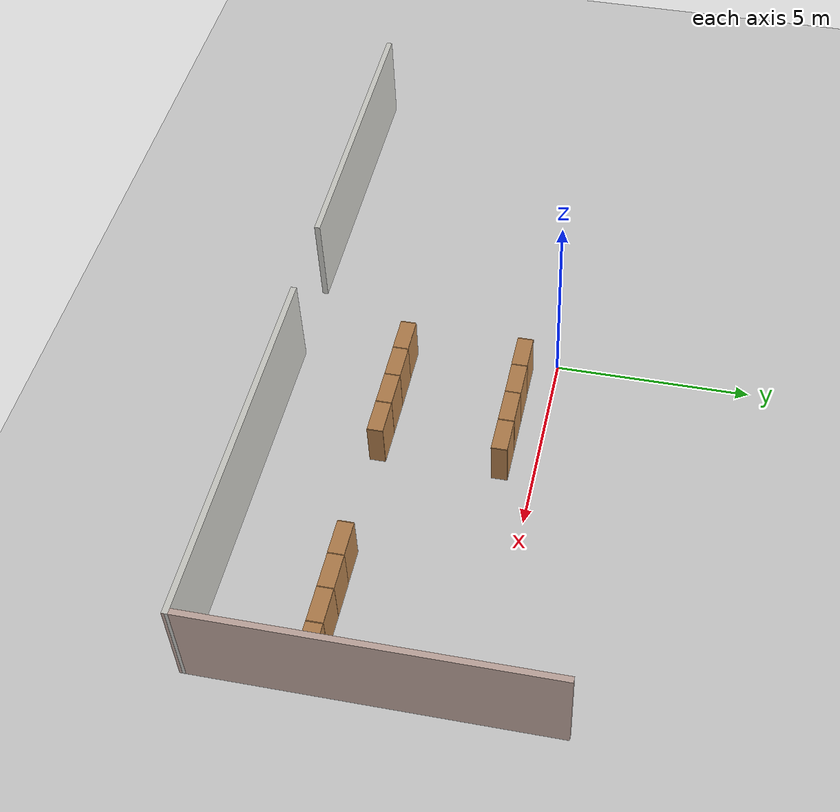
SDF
<sdf version="1.6">
 <world name="default">
  <model name="ground_plane">
   <static>1</static>
   <link name="link">
    <collision name="collision">
     <geometry><plane><normal>0 0 1</normal><size>100 100</size></plane></geometry>
     <surface><friction><ode><mu>100</mu><mu2>50</mu2></ode></friction></surface>
    </collision>
    <visual name="visual">
     <cast_shadows>0</cast_shadows>
     <geometry><plane><normal>0 0 1</normal><size>100 100</size></plane></geometry>
     <material>
      <script><uri>file://media/materials/scripts/gazebo.material</uri><name>Gazebo/Grey</name></script>
     </material>
    </visual>
   </link>
  </model>
  <model name="floor">
   <link name="Wall_194">
    <pose>-6.72445 -5.41807 0 0 -0 0</pose>
    <visual name="Wall_194_Visual">
     <pose>0 0 1.25 0 -0 0</pose>
     <geometry><box><size>8 0.15 2.5</size></box></geometry>
     <material>
      <script><uri>file://media/materials/scripts/gazebo.material</uri><name>Gazebo/CeilingTiled</name></script>
      <ambient>0.760784 0.662745 0.627451 1</ambient>
     </material>
     <meta><layer>0</layer></meta>
    </visual>
    <collision name="Wall_194_Collision">
     <pose>0 0 1.25 0 -0 0</pose>
     <geometry><box><size>8 0.15 2.5</size></box></geometry>
     <surface>
      <friction>
       <ode><mu>1</mu><mu2>1</mu2><fdir1>0 0 0</fdir1><slip1>0</slip1><slip2>0</slip2></ode>
       <torsional>
        <coefficient>1</coefficient>
        <patch_radius>0</patch_radius>
        <surface_radius>0</surface_radius>
        <use_patch_radius>1</use_patch_radius>
        <ode><slip>0</slip></ode>
       </torsional>
      </friction>
      <bounce><restitution_coefficient>0</restitution_coefficient><threshold>1e+06</threshold></bounce>
      <contact>
       <collide_without_contact>0</collide_without_contact>
       <collide_without_contact_bitmask>1</collide_without_contact_bitmask>
       <collide_bitmask>1</collide_bitmask>
       <ode>
        <soft_cfm>0</soft_cfm>
        <soft_erp>0.2</soft_erp>
        <kp>1e+13</kp>
        <kd>1</kd>
        <max_vel>0.01</max_vel>
        <min_depth>0</min_depth>
       </ode>
       <bullet>
        <split_impulse>1</split_impulse>
        <split_impulse_penetration_threshold>-0.01</split_impulse_penetration_threshold>
        <soft_cfm>0</soft_cfm>
        <soft_erp>0.2</soft_erp>
        <kp>1e+13</kp>
        <kd>1</kd>
       </bullet>
      </contact>
     </surface>
    </collision>
   </link>
   <link name="Wall_196">
    <pose>4.3116 -5.43549 0 0 0 -0.00366</pose>
    <visual name="Wall_196_Visual">
     <pose>0 0 1.25 0 -0 0</pose>
     <geometry><box><size>9.67217 0.15 2.5</size></box></geometry>
     <material>
      <script><uri>file://media/materials/scripts/gazebo.material</uri><name>Gazebo/CeilingTiled</name></script>
      <ambient>0.760784 0.662745 0.627451 1</ambient>
     </material>
     <meta><layer>0</layer></meta>
    </visual>
    <collision name="Wall_196_Collision">
     <pose>0 0 1.25 0 -0 0</pose>
     <geometry><box><size>9.67217 0.15 2.5</size></box></geometry>
     <surface>
      <friction>
       <ode><mu>1</mu><mu2>1</mu2><fdir1>0 0 0</fdir1><slip1>0</slip1><slip2>0</slip2></ode>
       <torsional>
        <coefficient>1</coefficient>
        <patch_radius>0</patch_radius>
        <surface_radius>0</surface_radius>
        <use_patch_radius>1</use_patch_radius>
        <ode><slip>0</slip></ode>
       </torsional>
      </friction>
      <bounce><restitution_coefficient>0</restitution_coefficient><threshold>1e+06</threshold></bounce>
      <contact>
       <collide_without_contact>0</collide_without_contact>
       <collide_without_contact_bitmask>1</collide_without_contact_bitmask>
       <collide_bitmask>1</collide_bitmask>
       <ode>
        <soft_cfm>0</soft_cfm>
        <soft_erp>0.2</soft_erp>
        <kp>1e+13</kp>
        <kd>1</kd>
        <max_vel>0.01</max_vel>
        <min_depth>0</min_depth>
       </ode>
       <bullet>
        <split_impulse>1</split_impulse>
        <split_impulse_penetration_threshold>-0.01</split_impulse_penetration_threshold>
        <soft_cfm>0</soft_cfm>
        <soft_erp>0.2</soft_erp>
        <kp>1e+13</kp>
        <kd>1</kd>
       </bullet>
      </contact>
     </surface>
    </collision>
   </link>
   <link name="Wall_83">
    <pose>9.07265 -1.12792 0 0 0 -1.5708</pose>
    <visual name="Wall_83_Visual">
     <pose>0 0 1.25 0 -0 0</pose>
     <geometry><box><size>8.8 0.15 2.5</size></box></geometry>
     <material>
      <script><uri>file://media/materials/scripts/gazebo.material</uri><name>Gazebo/Grey</name></script>
      <ambient>0.760784 0.662745 0.627451 1</ambient>
     </material>
     <meta><layer>0</layer></meta>
    </visual>
    <collision name="Wall_83_Collision">
     <pose>0 0 1.25 0 -0 0</pose>
     <geometry><box><size>8.8 0.15 2.5</size></box></geometry>
     <surface>
      <friction>
       <ode><mu>1</mu><mu2>1</mu2><fdir1>0 0 0</fdir1><slip1>0</slip1><slip2>0</slip2></ode>
       <torsional>
        <coefficient>1</coefficient>
        <patch_radius>0</patch_radius>
        <surface_radius>0</surface_radius>
        <use_patch_radius>1</use_patch_radius>
        <ode><slip>0</slip></ode>
       </torsional>
      </friction>
      <bounce><restitution_coefficient>0</restitution_coefficient><threshold>1e+06</threshold></bounce>
      <contact>
       <collide_without_contact>0</collide_without_contact>
       <collide_without_contact_bitmask>1</collide_without_contact_bitmask>
       <collide_bitmask>1</collide_bitmask>
       <ode>
        <soft_cfm>0</soft_cfm>
        <soft_erp>0.2</soft_erp>
        <kp>1e+13</kp>
        <kd>1</kd>
        <max_vel>0.01</max_vel>
        <min_depth>0</min_depth>
       </ode>
       <bullet>
        <split_impulse>1</split_impulse>
        <split_impulse_penetration_threshold>-0.01</split_impulse_penetration_threshold>
        <soft_cfm>0</soft_cfm>
        <soft_erp>0.2</soft_erp>
        <kp>1e+13</kp>
        <kd>1</kd>
       </bullet>
      </contact>
     </surface>
    </collision>
   </link>
   <static>1</static>
   <pose>1.26361 -1.27025 0 0 -0 0</pose>
  </model>
  <model name="Bookshelf-4_clone_4">
   <model name="bookshelf">
    <static>1</static>
    <link name="link">
     <inertial><mass>1</mass></inertial>
     <collision name="back">
      <pose>0 0.005 0.6 0 -0 0</pose>
      <geometry><box><size>0.9 0.01 1.2</size></box></geometry>
     </collision>
     <visual name="visual1">
      <pose>0 0.005 0.6 0 -0 0</pose>
      <geometry><box><size>0.9 0.01 1.2</size></box></geometry>
      <material>
       <script><uri>file://media/materials/scripts/gazebo.material</uri><name>Gazebo/Wood</name></script>
      </material>
     </visual>
     <collision name="left_side">
      <pose>0.45 -0.195 0.6 0 -0 0</pose>
      <geometry><box><size>0.02 0.4 1.2</size></box></geometry>
     </collision>
     <visual name="visual2">
      <pose>0.45 -0.195 0.6 0 -0 0</pose>
      <geometry><box><size>0.02 0.4 1.2</size></box></geometry>
      <material>
       <script><uri>file://media/materials/scripts/gazebo.material</uri><name>Gazebo/Wood</name></script>
      </material>
     </visual>
     <collision name="right_side">
      <pose>-0.45 -0.195 0.6 0 -0 0</pose>
      <geometry><box><size>0.02 0.4 1.2</size></box></geometry>
     </collision>
     <visual name="visual3">
      <pose>-0.45 -0.195 0.6 0 -0 0</pose>
      <geometry><box><size>0.02 0.4 1.2</size></box></geometry>
      <material>
       <script><uri>file://media/materials/scripts/gazebo.material</uri><name>Gazebo/Wood</name></script>
      </material>
     </visual>
     <collision name="bottom">
      <pose>0 -0.195 0.03 0 -0 0</pose>
      <geometry><box><size>0.88 0.4 0.06</size></box></geometry>
     </collision>
     <visual name="visual4">
      <pose>0 -0.195 0.03 0 -0 0</pose>
      <geometry><box><size>0.88 0.4 0.06</size></box></geometry>
      <material>
       <script><uri>file://media/materials/scripts/gazebo.material</uri><name>Gazebo/Wood</name></script>
      </material>
     </visual>
     <collision name="top">
      <pose>0 -0.195 1.19 0 -0 0</pose>
      <geometry><box><size>0.88 0.4 0.02</size></box></geometry>
     </collision>
     <visual name="visual5">
      <pose>0 -0.195 1.19 0 -0 0</pose>
      <geometry><box><size>0.88 0.4 0.02</size></box></geometry>
      <material>
       <script><uri>file://media/materials/scripts/gazebo.material</uri><name>Gazebo/Wood</name></script>
      </material>
     </visual>
     <collision name="low_shelf">
      <pose>0 -0.195 0.43 0 -0 0</pose>
      <geometry><box><size>0.88 0.4 0.02</size></box></geometry>
     </collision>
     <visual name="visual6">
      <pose>0 -0.195 0.43 0 -0 0</pose>
      <geometry><box><size>0.88 0.4 0.02</size></box></geometry>
      <material>
       <script><uri>file://media/materials/scripts/gazebo.material</uri><name>Gazebo/Wood</name></script>
      </material>
     </visual>
     <collision name="high_shelf">
      <pose>0 -0.195 0.8 0 -0 0</pose>
      <geometry><box><size>0.88 0.4 0.02</size></box></geometry>
     </collision>
     <visual name="visual7">
      <pose>0 -0.195 0.8 0 -0 0</pose>
      <geometry><box><size>0.88 0.4 0.02</size></box></geometry>
      <material>
       <script><uri>file://media/materials/scripts/gazebo.material</uri><name>Gazebo/Wood</name></script>
      </material>
     </visual>
    </link>
    <pose>-1.35671 -0.002097 0 0 -0 0</pose>
   </model>
   <model name="bookshelf_0">
    <static>1</static>
    <link name="link">
     <inertial><mass>1</mass></inertial>
     <collision name="back">
      <pose>0 0.005 0.6 0 -0 0</pose>
      <geometry><box><size>0.9 0.01 1.2</size></box></geometry>
     </collision>
     <visual name="visual1">
      <pose>0 0.005 0.6 0 -0 0</pose>
      <geometry><box><size>0.9 0.01 1.2</size></box></geometry>
      <material>
       <script><uri>file://media/materials/scripts/gazebo.material</uri><name>Gazebo/Wood</name></script>
      </material>
     </visual>
     <collision name="left_side">
      <pose>0.45 -0.195 0.6 0 -0 0</pose>
      <geometry><box><size>0.02 0.4 1.2</size></box></geometry>
     </collision>
     <visual name="visual2">
      <pose>0.45 -0.195 0.6 0 -0 0</pose>
      <geometry><box><size>0.02 0.4 1.2</size></box></geometry>
      <material>
       <script><uri>file://media/materials/scripts/gazebo.material</uri><name>Gazebo/Wood</name></script>
      </material>
     </visual>
     <collision name="right_side">
      <pose>-0.45 -0.195 0.6 0 -0 0</pose>
      <geometry><box><size>0.02 0.4 1.2</size></box></geometry>
     </collision>
     <visual name="visual3">
      <pose>-0.45 -0.195 0.6 0 -0 0</pose>
      <geometry><box><size>0.02 0.4 1.2</size></box></geometry>
      <material>
       <script><uri>file://media/materials/scripts/gazebo.material</uri><name>Gazebo/Wood</name></script>
      </material>
     </visual>
     <collision name="bottom">
      <pose>0 -0.195 0.03 0 -0 0</pose>
      <geometry><box><size>0.88 0.4 0.06</size></box></geometry>
     </collision>
     <visual name="visual4">
      <pose>0 -0.195 0.03 0 -0 0</pose>
      <geometry><box><size>0.88 0.4 0.06</size></box></geometry>
      <material>
       <script><uri>file://media/materials/scripts/gazebo.material</uri><name>Gazebo/Wood</name></script>
      </material>
     </visual>
     <collision name="top">
      <pose>0 -0.195 1.19 0 -0 0</pose>
      <geometry><box><size>0.88 0.4 0.02</size></box></geometry>
     </collision>
     <visual name="visual5">
      <pose>0 -0.195 1.19 0 -0 0</pose>
      <geometry><box><size>0.88 0.4 0.02</size></box></geometry>
      <material>
       <script><uri>file://media/materials/scripts/gazebo.material</uri><name>Gazebo/Wood</name></script>
      </material>
     </visual>
     <collision name="low_shelf">
      <pose>0 -0.195 0.43 0 -0 0</pose>
      <geometry><box><size>0.88 0.4 0.02</size></box></geometry>
     </collision>
     <visual name="visual6">
      <pose>0 -0.195 0.43 0 -0 0</pose>
      <geometry><box><size>0.88 0.4 0.02</size></box></geometry>
      <material>
       <script><uri>file://media/materials/scripts/gazebo.material</uri><name>Gazebo/Wood</name></script>
      </material>
     </visual>
     <collision name="high_shelf">
      <pose>0 -0.195 0.8 0 -0 0</pose>
      <geometry><box><size>0.88 0.4 0.02</size></box></geometry>
     </collision>
     <visual name="visual7">
      <pose>0 -0.195 0.8 0 -0 0</pose>
      <geometry><box><size>0.88 0.4 0.02</size></box></geometry>
      <material>
       <script><uri>file://media/materials/scripts/gazebo.material</uri><name>Gazebo/Wood</name></script>
      </material>
     </visual>
    </link>
    <pose>-0.452974 0.001386 0 0 -0 0</pose>
   </model>
   <model name="bookshelf_1">
    <static>1</static>
    <link name="link">
     <inertial><mass>1</mass></inertial>
     <collision name="back">
      <pose>0 0.005 0.6 0 -0 0</pose>
      <geometry><box><size>0.9 0.01 1.2</size></box></geometry>
     </collision>
     <visual name="visual1">
      <pose>0 0.005 0.6 0 -0 0</pose>
      <geometry><box><size>0.9 0.01 1.2</size></box></geometry>
      <material>
       <script><uri>file://media/materials/scripts/gazebo.material</uri><name>Gazebo/Wood</name></script>
      </material>
     </visual>
     <collision name="left_side">
      <pose>0.45 -0.195 0.6 0 -0 0</pose>
      <geometry><box><size>0.02 0.4 1.2</size></box></geometry>
     </collision>
     <visual name="visual2">
      <pose>0.45 -0.195 0.6 0 -0 0</pose>
      <geometry><box><size>0.02 0.4 1.2</size></box></geometry>
      <material>
       <script><uri>file://media/materials/scripts/gazebo.material</uri><name>Gazebo/Wood</name></script>
      </material>
     </visual>
     <collision name="right_side">
      <pose>-0.45 -0.195 0.6 0 -0 0</pose>
      <geometry><box><size>0.02 0.4 1.2</size></box></geometry>
     </collision>
     <visual name="visual3">
      <pose>-0.45 -0.195 0.6 0 -0 0</pose>
      <geometry><box><size>0.02 0.4 1.2</size></box></geometry>
      <material>
       <script><uri>file://media/materials/scripts/gazebo.material</uri><name>Gazebo/Wood</name></script>
      </material>
     </visual>
     <collision name="bottom">
      <pose>0 -0.195 0.03 0 -0 0</pose>
      <geometry><box><size>0.88 0.4 0.06</size></box></geometry>
     </collision>
     <visual name="visual4">
      <pose>0 -0.195 0.03 0 -0 0</pose>
      <geometry><box><size>0.88 0.4 0.06</size></box></geometry>
      <material>
       <script><uri>file://media/materials/scripts/gazebo.material</uri><name>Gazebo/Wood</name></script>
      </material>
     </visual>
     <collision name="top">
      <pose>0 -0.195 1.19 0 -0 0</pose>
      <geometry><box><size>0.88 0.4 0.02</size></box></geometry>
     </collision>
     <visual name="visual5">
      <pose>0 -0.195 1.19 0 -0 0</pose>
      <geometry><box><size>0.88 0.4 0.02</size></box></geometry>
      <material>
       <script><uri>file://media/materials/scripts/gazebo.material</uri><name>Gazebo/Wood</name></script>
      </material>
     </visual>
     <collision name="low_shelf">
      <pose>0 -0.195 0.43 0 -0 0</pose>
      <geometry><box><size>0.88 0.4 0.02</size></box></geometry>
     </collision>
     <visual name="visual6">
      <pose>0 -0.195 0.43 0 -0 0</pose>
      <geometry><box><size>0.88 0.4 0.02</size></box></geometry>
      <material>
       <script><uri>file://media/materials/scripts/gazebo.material</uri><name>Gazebo/Wood</name></script>
      </material>
     </visual>
     <collision name="high_shelf">
      <pose>0 -0.195 0.8 0 -0 0</pose>
      <geometry><box><size>0.88 0.4 0.02</size></box></geometry>
     </collision>
     <visual name="visual7">
      <pose>0 -0.195 0.8 0 -0 0</pose>
      <geometry><box><size>0.88 0.4 0.02</size></box></geometry>
      <material>
       <script><uri>file://media/materials/scripts/gazebo.material</uri><name>Gazebo/Wood</name></script>
      </material>
     </visual>
    </link>
    <pose>0.450456 0.000733 0 0 -0 0</pose>
   </model>
   <model name="bookshelf_2">
    <static>1</static>
    <link name="link">
     <inertial><mass>1</mass></inertial>
     <collision name="back">
      <pose>0 0.005 0.6 0 -0 0</pose>
      <geometry><box><size>0.9 0.01 1.2</size></box></geometry>
     </collision>
     <visual name="visual1">
      <pose>0 0.005 0.6 0 -0 0</pose>
      <geometry><box><size>0.9 0.01 1.2</size></box></geometry>
      <material>
       <script><uri>file://media/materials/scripts/gazebo.material</uri><name>Gazebo/Wood</name></script>
      </material>
     </visual>
     <collision name="left_side">
      <pose>0.45 -0.195 0.6 0 -0 0</pose>
      <geometry><box><size>0.02 0.4 1.2</size></box></geometry>
     </collision>
     <visual name="visual2">
      <pose>0.45 -0.195 0.6 0 -0 0</pose>
      <geometry><box><size>0.02 0.4 1.2</size></box></geometry>
      <material>
       <script><uri>file://media/materials/scripts/gazebo.material</uri><name>Gazebo/Wood</name></script>
      </material>
     </visual>
     <collision name="right_side">
      <pose>-0.45 -0.195 0.6 0 -0 0</pose>
      <geometry><box><size>0.02 0.4 1.2</size></box></geometry>
     </collision>
     <visual name="visual3">
      <pose>-0.45 -0.195 0.6 0 -0 0</pose>
      <geometry><box><size>0.02 0.4 1.2</size></box></geometry>
      <material>
       <script><uri>file://media/materials/scripts/gazebo.material</uri><name>Gazebo/Wood</name></script>
      </material>
     </visual>
     <collision name="bottom">
      <pose>0 -0.195 0.03 0 -0 0</pose>
      <geometry><box><size>0.88 0.4 0.06</size></box></geometry>
     </collision>
     <visual name="visual4">
      <pose>0 -0.195 0.03 0 -0 0</pose>
      <geometry><box><size>0.88 0.4 0.06</size></box></geometry>
      <material>
       <script><uri>file://media/materials/scripts/gazebo.material</uri><name>Gazebo/Wood</name></script>
      </material>
     </visual>
     <collision name="top">
      <pose>0 -0.195 1.19 0 -0 0</pose>
      <geometry><box><size>0.88 0.4 0.02</size></box></geometry>
     </collision>
     <visual name="visual5">
      <pose>0 -0.195 1.19 0 -0 0</pose>
      <geometry><box><size>0.88 0.4 0.02</size></box></geometry>
      <material>
       <script><uri>file://media/materials/scripts/gazebo.material</uri><name>Gazebo/Wood</name></script>
      </material>
     </visual>
     <collision name="low_shelf">
      <pose>0 -0.195 0.43 0 -0 0</pose>
      <geometry><box><size>0.88 0.4 0.02</size></box></geometry>
     </collision>
     <visual name="visual6">
      <pose>0 -0.195 0.43 0 -0 0</pose>
      <geometry><box><size>0.88 0.4 0.02</size></box></geometry>
      <material>
       <script><uri>file://media/materials/scripts/gazebo.material</uri><name>Gazebo/Wood</name></script>
      </material>
     </visual>
     <collision name="high_shelf">
      <pose>0 -0.195 0.8 0 -0 0</pose>
      <geometry><box><size>0.88 0.4 0.02</size></box></geometry>
     </collision>
     <visual name="visual7">
      <pose>0 -0.195 0.8 0 -0 0</pose>
      <geometry><box><size>0.88 0.4 0.02</size></box></geometry>
      <material>
       <script><uri>file://media/materials/scripts/gazebo.material</uri><name>Gazebo/Wood</name></script>
      </material>
     </visual>
    </link>
    <pose>1.35922 -1.7e-05 0 0 -0 0</pose>
   </model>
   <static>0</static>
   <pose>2.02248 -0.621397 0 0 -0 0</pose>
  </model>
  <model name="Bookshelf-4_clone_5">
   <model name="bookshelf">
    <static>1</static>
    <link name="link">
     <inertial><mass>1</mass></inertial>
     <collision name="back">
      <pose>0 0.005 0.6 0 -0 0</pose>
      <geometry><box><size>0.9 0.01 1.2</size></box></geometry>
     </collision>
     <visual name="visual1">
      <pose>0 0.005 0.6 0 -0 0</pose>
      <geometry><box><size>0.9 0.01 1.2</size></box></geometry>
      <material>
       <script><uri>file://media/materials/scripts/gazebo.material</uri><name>Gazebo/Wood</name></script>
      </material>
     </visual>
     <collision name="left_side">
      <pose>0.45 -0.195 0.6 0 -0 0</pose>
      <geometry><box><size>0.02 0.4 1.2</size></box></geometry>
     </collision>
     <visual name="visual2">
      <pose>0.45 -0.195 0.6 0 -0 0</pose>
      <geometry><box><size>0.02 0.4 1.2</size></box></geometry>
      <material>
       <script><uri>file://media/materials/scripts/gazebo.material</uri><name>Gazebo/Wood</name></script>
      </material>
     </visual>
     <collision name="right_side">
      <pose>-0.45 -0.195 0.6 0 -0 0</pose>
      <geometry><box><size>0.02 0.4 1.2</size></box></geometry>
     </collision>
     <visual name="visual3">
      <pose>-0.45 -0.195 0.6 0 -0 0</pose>
      <geometry><box><size>0.02 0.4 1.2</size></box></geometry>
      <material>
       <script><uri>file://media/materials/scripts/gazebo.material</uri><name>Gazebo/Wood</name></script>
      </material>
     </visual>
     <collision name="bottom">
      <pose>0 -0.195 0.03 0 -0 0</pose>
      <geometry><box><size>0.88 0.4 0.06</size></box></geometry>
     </collision>
     <visual name="visual4">
      <pose>0 -0.195 0.03 0 -0 0</pose>
      <geometry><box><size>0.88 0.4 0.06</size></box></geometry>
      <material>
       <script><uri>file://media/materials/scripts/gazebo.material</uri><name>Gazebo/Wood</name></script>
      </material>
     </visual>
     <collision name="top">
      <pose>0 -0.195 1.19 0 -0 0</pose>
      <geometry><box><size>0.88 0.4 0.02</size></box></geometry>
     </collision>
     <visual name="visual5">
      <pose>0 -0.195 1.19 0 -0 0</pose>
      <geometry><box><size>0.88 0.4 0.02</size></box></geometry>
      <material>
       <script><uri>file://media/materials/scripts/gazebo.material</uri><name>Gazebo/Wood</name></script>
      </material>
     </visual>
     <collision name="low_shelf">
      <pose>0 -0.195 0.43 0 -0 0</pose>
      <geometry><box><size>0.88 0.4 0.02</size></box></geometry>
     </collision>
     <visual name="visual6">
      <pose>0 -0.195 0.43 0 -0 0</pose>
      <geometry><box><size>0.88 0.4 0.02</size></box></geometry>
      <material>
       <script><uri>file://media/materials/scripts/gazebo.material</uri><name>Gazebo/Wood</name></script>
      </material>
     </visual>
     <collision name="high_shelf">
      <pose>0 -0.195 0.8 0 -0 0</pose>
      <geometry><box><size>0.88 0.4 0.02</size></box></geometry>
     </collision>
     <visual name="visual7">
      <pose>0 -0.195 0.8 0 -0 0</pose>
      <geometry><box><size>0.88 0.4 0.02</size></box></geometry>
      <material>
       <script><uri>file://media/materials/scripts/gazebo.material</uri><name>Gazebo/Wood</name></script>
      </material>
     </visual>
    </link>
    <pose>-1.35671 -0.002097 0 0 -0 0</pose>
   </model>
   <model name="bookshelf_0">
    <static>1</static>
    <link name="link">
     <inertial><mass>1</mass></inertial>
     <collision name="back">
      <pose>0 0.005 0.6 0 -0 0</pose>
      <geometry><box><size>0.9 0.01 1.2</size></box></geometry>
     </collision>
     <visual name="visual1">
      <pose>0 0.005 0.6 0 -0 0</pose>
      <geometry><box><size>0.9 0.01 1.2</size></box></geometry>
      <material>
       <script><uri>file://media/materials/scripts/gazebo.material</uri><name>Gazebo/Wood</name></script>
      </material>
     </visual>
     <collision name="left_side">
      <pose>0.45 -0.195 0.6 0 -0 0</pose>
      <geometry><box><size>0.02 0.4 1.2</size></box></geometry>
     </collision>
     <visual name="visual2">
      <pose>0.45 -0.195 0.6 0 -0 0</pose>
      <geometry><box><size>0.02 0.4 1.2</size></box></geometry>
      <material>
       <script><uri>file://media/materials/scripts/gazebo.material</uri><name>Gazebo/Wood</name></script>
      </material>
     </visual>
     <collision name="right_side">
      <pose>-0.45 -0.195 0.6 0 -0 0</pose>
      <geometry><box><size>0.02 0.4 1.2</size></box></geometry>
     </collision>
     <visual name="visual3">
      <pose>-0.45 -0.195 0.6 0 -0 0</pose>
      <geometry><box><size>0.02 0.4 1.2</size></box></geometry>
      <material>
       <script><uri>file://media/materials/scripts/gazebo.material</uri><name>Gazebo/Wood</name></script>
      </material>
     </visual>
     <collision name="bottom">
      <pose>0 -0.195 0.03 0 -0 0</pose>
      <geometry><box><size>0.88 0.4 0.06</size></box></geometry>
     </collision>
     <visual name="visual4">
      <pose>0 -0.195 0.03 0 -0 0</pose>
      <geometry><box><size>0.88 0.4 0.06</size></box></geometry>
      <material>
       <script><uri>file://media/materials/scripts/gazebo.material</uri><name>Gazebo/Wood</name></script>
      </material>
     </visual>
     <collision name="top">
      <pose>0 -0.195 1.19 0 -0 0</pose>
      <geometry><box><size>0.88 0.4 0.02</size></box></geometry>
     </collision>
     <visual name="visual5">
      <pose>0 -0.195 1.19 0 -0 0</pose>
      <geometry><box><size>0.88 0.4 0.02</size></box></geometry>
      <material>
       <script><uri>file://media/materials/scripts/gazebo.material</uri><name>Gazebo/Wood</name></script>
      </material>
     </visual>
     <collision name="low_shelf">
      <pose>0 -0.195 0.43 0 -0 0</pose>
      <geometry><box><size>0.88 0.4 0.02</size></box></geometry>
     </collision>
     <visual name="visual6">
      <pose>0 -0.195 0.43 0 -0 0</pose>
      <geometry><box><size>0.88 0.4 0.02</size></box></geometry>
      <material>
       <script><uri>file://media/materials/scripts/gazebo.material</uri><name>Gazebo/Wood</name></script>
      </material>
     </visual>
     <collision name="high_shelf">
      <pose>0 -0.195 0.8 0 -0 0</pose>
      <geometry><box><size>0.88 0.4 0.02</size></box></geometry>
     </collision>
     <visual name="visual7">
      <pose>0 -0.195 0.8 0 -0 0</pose>
      <geometry><box><size>0.88 0.4 0.02</size></box></geometry>
      <material>
       <script><uri>file://media/materials/scripts/gazebo.material</uri><name>Gazebo/Wood</name></script>
      </material>
     </visual>
    </link>
    <pose>-0.452974 0.001386 0 0 -0 0</pose>
   </model>
   <model name="bookshelf_1">
    <static>1</static>
    <link name="link">
     <inertial><mass>1</mass></inertial>
     <collision name="back">
      <pose>0 0.005 0.6 0 -0 0</pose>
      <geometry><box><size>0.9 0.01 1.2</size></box></geometry>
     </collision>
     <visual name="visual1">
      <pose>0 0.005 0.6 0 -0 0</pose>
      <geometry><box><size>0.9 0.01 1.2</size></box></geometry>
      <material>
       <script><uri>file://media/materials/scripts/gazebo.material</uri><name>Gazebo/Wood</name></script>
      </material>
     </visual>
     <collision name="left_side">
      <pose>0.45 -0.195 0.6 0 -0 0</pose>
      <geometry><box><size>0.02 0.4 1.2</size></box></geometry>
     </collision>
     <visual name="visual2">
      <pose>0.45 -0.195 0.6 0 -0 0</pose>
      <geometry><box><size>0.02 0.4 1.2</size></box></geometry>
      <material>
       <script><uri>file://media/materials/scripts/gazebo.material</uri><name>Gazebo/Wood</name></script>
      </material>
     </visual>
     <collision name="right_side">
      <pose>-0.45 -0.195 0.6 0 -0 0</pose>
      <geometry><box><size>0.02 0.4 1.2</size></box></geometry>
     </collision>
     <visual name="visual3">
      <pose>-0.45 -0.195 0.6 0 -0 0</pose>
      <geometry><box><size>0.02 0.4 1.2</size></box></geometry>
      <material>
       <script><uri>file://media/materials/scripts/gazebo.material</uri><name>Gazebo/Wood</name></script>
      </material>
     </visual>
     <collision name="bottom">
      <pose>0 -0.195 0.03 0 -0 0</pose>
      <geometry><box><size>0.88 0.4 0.06</size></box></geometry>
     </collision>
     <visual name="visual4">
      <pose>0 -0.195 0.03 0 -0 0</pose>
      <geometry><box><size>0.88 0.4 0.06</size></box></geometry>
      <material>
       <script><uri>file://media/materials/scripts/gazebo.material</uri><name>Gazebo/Wood</name></script>
      </material>
     </visual>
     <collision name="top">
      <pose>0 -0.195 1.19 0 -0 0</pose>
      <geometry><box><size>0.88 0.4 0.02</size></box></geometry>
     </collision>
     <visual name="visual5">
      <pose>0 -0.195 1.19 0 -0 0</pose>
      <geometry><box><size>0.88 0.4 0.02</size></box></geometry>
      <material>
       <script><uri>file://media/materials/scripts/gazebo.material</uri><name>Gazebo/Wood</name></script>
      </material>
     </visual>
     <collision name="low_shelf">
      <pose>0 -0.195 0.43 0 -0 0</pose>
      <geometry><box><size>0.88 0.4 0.02</size></box></geometry>
     </collision>
     <visual name="visual6">
      <pose>0 -0.195 0.43 0 -0 0</pose>
      <geometry><box><size>0.88 0.4 0.02</size></box></geometry>
      <material>
       <script><uri>file://media/materials/scripts/gazebo.material</uri><name>Gazebo/Wood</name></script>
      </material>
     </visual>
     <collision name="high_shelf">
      <pose>0 -0.195 0.8 0 -0 0</pose>
      <geometry><box><size>0.88 0.4 0.02</size></box></geometry>
     </collision>
     <visual name="visual7">
      <pose>0 -0.195 0.8 0 -0 0</pose>
      <geometry><box><size>0.88 0.4 0.02</size></box></geometry>
      <material>
       <script><uri>file://media/materials/scripts/gazebo.material</uri><name>Gazebo/Wood</name></script>
      </material>
     </visual>
    </link>
    <pose>0.450456 0.000733 0 0 -0 0</pose>
   </model>
   <model name="bookshelf_2">
    <static>1</static>
    <link name="link">
     <inertial><mass>1</mass></inertial>
     <collision name="back">
      <pose>0 0.005 0.6 0 -0 0</pose>
      <geometry><box><size>0.9 0.01 1.2</size></box></geometry>
     </collision>
     <visual name="visual1">
      <pose>0 0.005 0.6 0 -0 0</pose>
      <geometry><box><size>0.9 0.01 1.2</size></box></geometry>
      <material>
       <script><uri>file://media/materials/scripts/gazebo.material</uri><name>Gazebo/Wood</name></script>
      </material>
     </visual>
     <collision name="left_side">
      <pose>0.45 -0.195 0.6 0 -0 0</pose>
      <geometry><box><size>0.02 0.4 1.2</size></box></geometry>
     </collision>
     <visual name="visual2">
      <pose>0.45 -0.195 0.6 0 -0 0</pose>
      <geometry><box><size>0.02 0.4 1.2</size></box></geometry>
      <material>
       <script><uri>file://media/materials/scripts/gazebo.material</uri><name>Gazebo/Wood</name></script>
      </material>
     </visual>
     <collision name="right_side">
      <pose>-0.45 -0.195 0.6 0 -0 0</pose>
      <geometry><box><size>0.02 0.4 1.2</size></box></geometry>
     </collision>
     <visual name="visual3">
      <pose>-0.45 -0.195 0.6 0 -0 0</pose>
      <geometry><box><size>0.02 0.4 1.2</size></box></geometry>
      <material>
       <script><uri>file://media/materials/scripts/gazebo.material</uri><name>Gazebo/Wood</name></script>
      </material>
     </visual>
     <collision name="bottom">
      <pose>0 -0.195 0.03 0 -0 0</pose>
      <geometry><box><size>0.88 0.4 0.06</size></box></geometry>
     </collision>
     <visual name="visual4">
      <pose>0 -0.195 0.03 0 -0 0</pose>
      <geometry><box><size>0.88 0.4 0.06</size></box></geometry>
      <material>
       <script><uri>file://media/materials/scripts/gazebo.material</uri><name>Gazebo/Wood</name></script>
      </material>
     </visual>
     <collision name="top">
      <pose>0 -0.195 1.19 0 -0 0</pose>
      <geometry><box><size>0.88 0.4 0.02</size></box></geometry>
     </collision>
     <visual name="visual5">
      <pose>0 -0.195 1.19 0 -0 0</pose>
      <geometry><box><size>0.88 0.4 0.02</size></box></geometry>
      <material>
       <script><uri>file://media/materials/scripts/gazebo.material</uri><name>Gazebo/Wood</name></script>
      </material>
     </visual>
     <collision name="low_shelf">
      <pose>0 -0.195 0.43 0 -0 0</pose>
      <geometry><box><size>0.88 0.4 0.02</size></box></geometry>
     </collision>
     <visual name="visual6">
      <pose>0 -0.195 0.43 0 -0 0</pose>
      <geometry><box><size>0.88 0.4 0.02</size></box></geometry>
      <material>
       <script><uri>file://media/materials/scripts/gazebo.material</uri><name>Gazebo/Wood</name></script>
      </material>
     </visual>
     <collision name="high_shelf">
      <pose>0 -0.195 0.8 0 -0 0</pose>
      <geometry><box><size>0.88 0.4 0.02</size></box></geometry>
     </collision>
     <visual name="visual7">
      <pose>0 -0.195 0.8 0 -0 0</pose>
      <geometry><box><size>0.88 0.4 0.02</size></box></geometry>
      <material>
       <script><uri>file://media/materials/scripts/gazebo.material</uri><name>Gazebo/Wood</name></script>
      </material>
     </visual>
    </link>
    <pose>1.35922 -1.7e-05 0 0 -0 0</pose>
   </model>
   <static>0</static>
   <pose>2.02248 -3.69996 0 0 -0 0</pose>
  </model>
  <model name="Bookshelf-4_clone_9">
   <model name="bookshelf">
    <static>1</static>
    <link name="link">
     <inertial><mass>1</mass></inertial>
     <collision name="back">
      <pose>0 0.005 0.6 0 -0 0</pose>
      <geometry><box><size>0.9 0.01 1.2</size></box></geometry>
     </collision>
     <visual name="visual1">
      <pose>0 0.005 0.6 0 -0 0</pose>
      <geometry><box><size>0.9 0.01 1.2</size></box></geometry>
      <material>
       <script><uri>file://media/materials/scripts/gazebo.material</uri><name>Gazebo/Wood</name></script>
      </material>
     </visual>
     <collision name="left_side">
      <pose>0.45 -0.195 0.6 0 -0 0</pose>
      <geometry><box><size>0.02 0.4 1.2</size></box></geometry>
     </collision>
     <visual name="visual2">
      <pose>0.45 -0.195 0.6 0 -0 0</pose>
      <geometry><box><size>0.02 0.4 1.2</size></box></geometry>
      <material>
       <script><uri>file://media/materials/scripts/gazebo.material</uri><name>Gazebo/Wood</name></script>
      </material>
     </visual>
     <collision name="right_side">
      <pose>-0.45 -0.195 0.6 0 -0 0</pose>
      <geometry><box><size>0.02 0.4 1.2</size></box></geometry>
     </collision>
     <visual name="visual3">
      <pose>-0.45 -0.195 0.6 0 -0 0</pose>
      <geometry><box><size>0.02 0.4 1.2</size></box></geometry>
      <material>
       <script><uri>file://media/materials/scripts/gazebo.material</uri><name>Gazebo/Wood</name></script>
      </material>
     </visual>
     <collision name="bottom">
      <pose>0 -0.195 0.03 0 -0 0</pose>
      <geometry><box><size>0.88 0.4 0.06</size></box></geometry>
     </collision>
     <visual name="visual4">
      <pose>0 -0.195 0.03 0 -0 0</pose>
      <geometry><box><size>0.88 0.4 0.06</size></box></geometry>
      <material>
       <script><uri>file://media/materials/scripts/gazebo.material</uri><name>Gazebo/Wood</name></script>
      </material>
     </visual>
     <collision name="top">
      <pose>0 -0.195 1.19 0 -0 0</pose>
      <geometry><box><size>0.88 0.4 0.02</size></box></geometry>
     </collision>
     <visual name="visual5">
      <pose>0 -0.195 1.19 0 -0 0</pose>
      <geometry><box><size>0.88 0.4 0.02</size></box></geometry>
      <material>
       <script><uri>file://media/materials/scripts/gazebo.material</uri><name>Gazebo/Wood</name></script>
      </material>
     </visual>
     <collision name="low_shelf">
      <pose>0 -0.195 0.43 0 -0 0</pose>
      <geometry><box><size>0.88 0.4 0.02</size></box></geometry>
     </collision>
     <visual name="visual6">
      <pose>0 -0.195 0.43 0 -0 0</pose>
      <geometry><box><size>0.88 0.4 0.02</size></box></geometry>
      <material>
       <script><uri>file://media/materials/scripts/gazebo.material</uri><name>Gazebo/Wood</name></script>
      </material>
     </visual>
     <collision name="high_shelf">
      <pose>0 -0.195 0.8 0 -0 0</pose>
      <geometry><box><size>0.88 0.4 0.02</size></box></geometry>
     </collision>
     <visual name="visual7">
      <pose>0 -0.195 0.8 0 -0 0</pose>
      <geometry><box><size>0.88 0.4 0.02</size></box></geometry>
      <material>
       <script><uri>file://media/materials/scripts/gazebo.material</uri><name>Gazebo/Wood</name></script>
      </material>
     </visual>
    </link>
    <pose>-1.35671 -0.002097 0 0 -0 0</pose>
   </model>
   <model name="bookshelf_0">
    <static>1</static>
    <link name="link">
     <inertial><mass>1</mass></inertial>
     <collision name="back">
      <pose>0 0.005 0.6 0 -0 0</pose>
      <geometry><box><size>0.9 0.01 1.2</size></box></geometry>
     </collision>
     <visual name="visual1">
      <pose>0 0.005 0.6 0 -0 0</pose>
      <geometry><box><size>0.9 0.01 1.2</size></box></geometry>
      <material>
       <script><uri>file://media/materials/scripts/gazebo.material</uri><name>Gazebo/Wood</name></script>
      </material>
     </visual>
     <collision name="left_side">
      <pose>0.45 -0.195 0.6 0 -0 0</pose>
      <geometry><box><size>0.02 0.4 1.2</size></box></geometry>
     </collision>
     <visual name="visual2">
      <pose>0.45 -0.195 0.6 0 -0 0</pose>
      <geometry><box><size>0.02 0.4 1.2</size></box></geometry>
      <material>
       <script><uri>file://media/materials/scripts/gazebo.material</uri><name>Gazebo/Wood</name></script>
      </material>
     </visual>
     <collision name="right_side">
      <pose>-0.45 -0.195 0.6 0 -0 0</pose>
      <geometry><box><size>0.02 0.4 1.2</size></box></geometry>
     </collision>
     <visual name="visual3">
      <pose>-0.45 -0.195 0.6 0 -0 0</pose>
      <geometry><box><size>0.02 0.4 1.2</size></box></geometry>
      <material>
       <script><uri>file://media/materials/scripts/gazebo.material</uri><name>Gazebo/Wood</name></script>
      </material>
     </visual>
     <collision name="bottom">
      <pose>0 -0.195 0.03 0 -0 0</pose>
      <geometry><box><size>0.88 0.4 0.06</size></box></geometry>
     </collision>
     <visual name="visual4">
      <pose>0 -0.195 0.03 0 -0 0</pose>
      <geometry><box><size>0.88 0.4 0.06</size></box></geometry>
      <material>
       <script><uri>file://media/materials/scripts/gazebo.material</uri><name>Gazebo/Wood</name></script>
      </material>
     </visual>
     <collision name="top">
      <pose>0 -0.195 1.19 0 -0 0</pose>
      <geometry><box><size>0.88 0.4 0.02</size></box></geometry>
     </collision>
     <visual name="visual5">
      <pose>0 -0.195 1.19 0 -0 0</pose>
      <geometry><box><size>0.88 0.4 0.02</size></box></geometry>
      <material>
       <script><uri>file://media/materials/scripts/gazebo.material</uri><name>Gazebo/Wood</name></script>
      </material>
     </visual>
     <collision name="low_shelf">
      <pose>0 -0.195 0.43 0 -0 0</pose>
      <geometry><box><size>0.88 0.4 0.02</size></box></geometry>
     </collision>
     <visual name="visual6">
      <pose>0 -0.195 0.43 0 -0 0</pose>
      <geometry><box><size>0.88 0.4 0.02</size></box></geometry>
      <material>
       <script><uri>file://media/materials/scripts/gazebo.material</uri><name>Gazebo/Wood</name></script>
      </material>
     </visual>
     <collision name="high_shelf">
      <pose>0 -0.195 0.8 0 -0 0</pose>
      <geometry><box><size>0.88 0.4 0.02</size></box></geometry>
     </collision>
     <visual name="visual7">
      <pose>0 -0.195 0.8 0 -0 0</pose>
      <geometry><box><size>0.88 0.4 0.02</size></box></geometry>
      <material>
       <script><uri>file://media/materials/scripts/gazebo.material</uri><name>Gazebo/Wood</name></script>
      </material>
     </visual>
    </link>
    <pose>-0.452974 0.001386 0 0 -0 0</pose>
   </model>
   <model name="bookshelf_1">
    <static>1</static>
    <link name="link">
     <inertial><mass>1</mass></inertial>
     <collision name="back">
      <pose>0 0.005 0.6 0 -0 0</pose>
      <geometry><box><size>0.9 0.01 1.2</size></box></geometry>
     </collision>
     <visual name="visual1">
      <pose>0 0.005 0.6 0 -0 0</pose>
      <geometry><box><size>0.9 0.01 1.2</size></box></geometry>
      <material>
       <script><uri>file://media/materials/scripts/gazebo.material</uri><name>Gazebo/Wood</name></script>
      </material>
     </visual>
     <collision name="left_side">
      <pose>0.45 -0.195 0.6 0 -0 0</pose>
      <geometry><box><size>0.02 0.4 1.2</size></box></geometry>
     </collision>
     <visual name="visual2">
      <pose>0.45 -0.195 0.6 0 -0 0</pose>
      <geometry><box><size>0.02 0.4 1.2</size></box></geometry>
      <material>
       <script><uri>file://media/materials/scripts/gazebo.material</uri><name>Gazebo/Wood</name></script>
      </material>
     </visual>
     <collision name="right_side">
      <pose>-0.45 -0.195 0.6 0 -0 0</pose>
      <geometry><box><size>0.02 0.4 1.2</size></box></geometry>
     </collision>
     <visual name="visual3">
      <pose>-0.45 -0.195 0.6 0 -0 0</pose>
      <geometry><box><size>0.02 0.4 1.2</size></box></geometry>
      <material>
       <script><uri>file://media/materials/scripts/gazebo.material</uri><name>Gazebo/Wood</name></script>
      </material>
     </visual>
     <collision name="bottom">
      <pose>0 -0.195 0.03 0 -0 0</pose>
      <geometry><box><size>0.88 0.4 0.06</size></box></geometry>
     </collision>
     <visual name="visual4">
      <pose>0 -0.195 0.03 0 -0 0</pose>
      <geometry><box><size>0.88 0.4 0.06</size></box></geometry>
      <material>
       <script><uri>file://media/materials/scripts/gazebo.material</uri><name>Gazebo/Wood</name></script>
      </material>
     </visual>
     <collision name="top">
      <pose>0 -0.195 1.19 0 -0 0</pose>
      <geometry><box><size>0.88 0.4 0.02</size></box></geometry>
     </collision>
     <visual name="visual5">
      <pose>0 -0.195 1.19 0 -0 0</pose>
      <geometry><box><size>0.88 0.4 0.02</size></box></geometry>
      <material>
       <script><uri>file://media/materials/scripts/gazebo.material</uri><name>Gazebo/Wood</name></script>
      </material>
     </visual>
     <collision name="low_shelf">
      <pose>0 -0.195 0.43 0 -0 0</pose>
      <geometry><box><size>0.88 0.4 0.02</size></box></geometry>
     </collision>
     <visual name="visual6">
      <pose>0 -0.195 0.43 0 -0 0</pose>
      <geometry><box><size>0.88 0.4 0.02</size></box></geometry>
      <material>
       <script><uri>file://media/materials/scripts/gazebo.material</uri><name>Gazebo/Wood</name></script>
      </material>
     </visual>
     <collision name="high_shelf">
      <pose>0 -0.195 0.8 0 -0 0</pose>
      <geometry><box><size>0.88 0.4 0.02</size></box></geometry>
     </collision>
     <visual name="visual7">
      <pose>0 -0.195 0.8 0 -0 0</pose>
      <geometry><box><size>0.88 0.4 0.02</size></box></geometry>
      <material>
       <script><uri>file://media/materials/scripts/gazebo.material</uri><name>Gazebo/Wood</name></script>
      </material>
     </visual>
    </link>
    <pose>0.450456 0.000733 0 0 -0 0</pose>
   </model>
   <model name="bookshelf_2">
    <static>1</static>
    <link name="link">
     <inertial><mass>1</mass></inertial>
     <collision name="back">
      <pose>0 0.005 0.6 0 -0 0</pose>
      <geometry><box><size>0.9 0.01 1.2</size></box></geometry>
     </collision>
     <visual name="visual1">
      <pose>0 0.005 0.6 0 -0 0</pose>
      <geometry><box><size>0.9 0.01 1.2</size></box></geometry>
      <material>
       <script><uri>file://media/materials/scripts/gazebo.material</uri><name>Gazebo/Wood</name></script>
      </material>
     </visual>
     <collision name="left_side">
      <pose>0.45 -0.195 0.6 0 -0 0</pose>
      <geometry><box><size>0.02 0.4 1.2</size></box></geometry>
     </collision>
     <visual name="visual2">
      <pose>0.45 -0.195 0.6 0 -0 0</pose>
      <geometry><box><size>0.02 0.4 1.2</size></box></geometry>
      <material>
       <script><uri>file://media/materials/scripts/gazebo.material</uri><name>Gazebo/Wood</name></script>
      </material>
     </visual>
     <collision name="right_side">
      <pose>-0.45 -0.195 0.6 0 -0 0</pose>
      <geometry><box><size>0.02 0.4 1.2</size></box></geometry>
     </collision>
     <visual name="visual3">
      <pose>-0.45 -0.195 0.6 0 -0 0</pose>
      <geometry><box><size>0.02 0.4 1.2</size></box></geometry>
      <material>
       <script><uri>file://media/materials/scripts/gazebo.material</uri><name>Gazebo/Wood</name></script>
      </material>
     </visual>
     <collision name="bottom">
      <pose>0 -0.195 0.03 0 -0 0</pose>
      <geometry><box><size>0.88 0.4 0.06</size></box></geometry>
     </collision>
     <visual name="visual4">
      <pose>0 -0.195 0.03 0 -0 0</pose>
      <geometry><box><size>0.88 0.4 0.06</size></box></geometry>
      <material>
       <script><uri>file://media/materials/scripts/gazebo.material</uri><name>Gazebo/Wood</name></script>
      </material>
     </visual>
     <collision name="top">
      <pose>0 -0.195 1.19 0 -0 0</pose>
      <geometry><box><size>0.88 0.4 0.02</size></box></geometry>
     </collision>
     <visual name="visual5">
      <pose>0 -0.195 1.19 0 -0 0</pose>
      <geometry><box><size>0.88 0.4 0.02</size></box></geometry>
      <material>
       <script><uri>file://media/materials/scripts/gazebo.material</uri><name>Gazebo/Wood</name></script>
      </material>
     </visual>
     <collision name="low_shelf">
      <pose>0 -0.195 0.43 0 -0 0</pose>
      <geometry><box><size>0.88 0.4 0.02</size></box></geometry>
     </collision>
     <visual name="visual6">
      <pose>0 -0.195 0.43 0 -0 0</pose>
      <geometry><box><size>0.88 0.4 0.02</size></box></geometry>
      <material>
       <script><uri>file://media/materials/scripts/gazebo.material</uri><name>Gazebo/Wood</name></script>
      </material>
     </visual>
     <collision name="high_shelf">
      <pose>0 -0.195 0.8 0 -0 0</pose>
      <geometry><box><size>0.88 0.4 0.02</size></box></geometry>
     </collision>
     <visual name="visual7">
      <pose>0 -0.195 0.8 0 -0 0</pose>
      <geometry><box><size>0.88 0.4 0.02</size></box></geometry>
      <material>
       <script><uri>file://media/materials/scripts/gazebo.material</uri><name>Gazebo/Wood</name></script>
      </material>
     </visual>
    </link>
    <pose>1.35922 -1.7e-05 0 0 -0 0</pose>
   </model>
   <static>0</static>
   <pose>8.37331 -3.69996 0 0 -0 0</pose>
  </model>
 </world>
</sdf>
